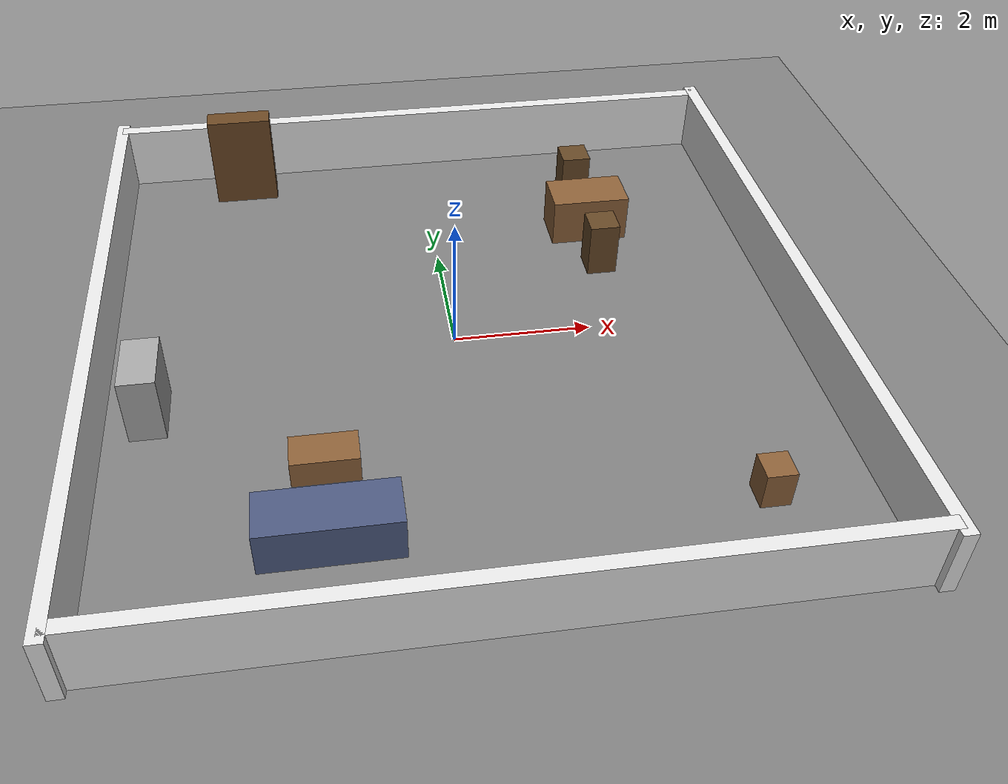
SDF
<?xml version="1.0"?>
<sdf version="1.9">
  <world name="room_10x10">

    <!-- ============================================================
         GZ SIM SYSTEM PLUGINS
         ============================================================ -->
    <plugin filename="gz-sim-physics-system" name="gz::sim::v8::systems::Physics"/>
    <plugin filename="gz-sim-scene-broadcaster-system" name="gz::sim::v8::systems::SceneBroadcaster"/>
    <plugin filename="gz-sim-user-commands-system" name="gz::sim::v8::systems::UserCommands"/>
    <plugin filename="gz-sim-sensors-system" name="gz::sim::v8::systems::Sensors">
      <render_engine>ogre2</render_engine>
    </plugin>

    <!-- ============================================================
         PHYSICS
         ============================================================ -->
    <physics name="1ms" type="ode">
      <real_time_update_rate>1000</real_time_update_rate>
      <max_step_size>0.001</max_step_size>
      <real_time_factor>1</real_time_factor>
      <ode>
        <solver>
          <type>quick</type>
          <iters>150</iters>
          <precon_iters>0</precon_iters>
          <sor>1.4</sor>
        </solver>
        <constraints>
          <cfm>1e-5</cfm>
          <erp>0.2</erp>
          <contact_max_correcting_vel>2000</contact_max_correcting_vel>
          <contact_surface_layer>0.01</contact_surface_layer>
        </constraints>
      </ode>
    </physics>

    <!-- ============================================================
         SCENE / LIGHTING
         ============================================================ -->
    <scene>
      <ambient>0.4 0.4 0.4 1</ambient>
      <background>0.7 0.7 0.7 1</background>
      <shadows>false</shadows>
    </scene>

    <!-- Directional sun light -->
    <light name="sun" type="directional">
      <cast_shadows>false</cast_shadows>
      <pose>0 0 10 0 0 0</pose>
      <diffuse>0.8 0.8 0.8 1</diffuse>
      <specular>0.2 0.2 0.2 1</specular>
      <direction>-0.5 0.1 -0.9</direction>
    </light>

    <!-- ============================================================
         GROUND PLANE
         ============================================================ -->
    <model name="ground_plane">
      <static>true</static>
      <link name="link">
        <collision name="collision">
          <geometry>
            <plane>
              <normal>0 0 1</normal>
              <size>100 100</size>
            </plane>
          </geometry>
          <surface>
            <friction>
              <ode>
                <mu>1</mu>
                <mu2>1</mu2>
              </ode>
            </friction>
          </surface>
        </collision>
        <visual name="visual">
          <cast_shadows>false</cast_shadows>
          <geometry>
            <plane>
              <normal>0 0 1</normal>
              <size>100 100</size>
            </plane>
          </geometry>
          <material>
            <ambient>0.5 0.5 0.5 1</ambient>
            <diffuse>0.5 0.5 0.5 1</diffuse>
          </material>
        </visual>
      </link>
    </model>

    <!-- NORTH wall: y = +5.0, runs along X axis -->
    <model name="wall_north">
      <static>true</static>
      <pose>0 5.0 0.5 0 0 0</pose>
      <link name="link">
        <collision name="collision">
          <geometry>
            <box><size>10.0 0.2 1.0</size></box>
          </geometry>
        </collision>
        <visual name="visual">
          <geometry>
            <box><size>10.0 0.2 1.0</size></box>
          </geometry>
          <material>
            <ambient>0.9 0.9 0.9 1</ambient>
            <diffuse>0.9 0.9 0.9 1</diffuse>
          </material>
        </visual>
      </link>
    </model>

    <!-- SOUTH wall: y = -5.0 -->
    <model name="wall_south">
      <static>true</static>
      <pose>0 -5.0 0.5 0 0 0</pose>
      <link name="link">
        <collision name="collision">
          <geometry>
            <box><size>10.0 0.2 1.0</size></box>
          </geometry>
        </collision>
        <visual name="visual">
          <geometry>
            <box><size>10.0 0.2 1.0</size></box>
          </geometry>
          <material>
            <ambient>0.9 0.9 0.9 1</ambient>
            <diffuse>0.9 0.9 0.9 1</diffuse>
          </material>
        </visual>
      </link>
    </model>

    <!-- EAST wall: x = +5.0, runs along Y axis -->
    <model name="wall_east">
      <static>true</static>
      <pose>5.0 0 0.5 0 0 0</pose>
      <link name="link">
        <collision name="collision">
          <geometry>
            <box><size>0.2 10.4 1.0</size></box>
          </geometry>
        </collision>
        <visual name="visual">
          <geometry>
            <box><size>0.2 10.4 1.0</size></box>
          </geometry>
          <material>
            <ambient>0.9 0.9 0.9 1</ambient>
            <diffuse>0.9 0.9 0.9 1</diffuse>
          </material>
        </visual>
      </link>
    </model>

    <!-- WEST wall: x = -5.0 -->
    <model name="wall_west">
      <static>true</static>
      <pose>-5.0 0 0.5 0 0 0</pose>
      <link name="link">
        <collision name="collision">
          <geometry>
            <box><size>0.2 10.4 1.0</size></box>
          </geometry>
        </collision>
        <visual name="visual">
          <geometry>
            <box><size>0.2 10.4 1.0</size></box>
          </geometry>
          <material>
            <ambient>0.9 0.9 0.9 1</ambient>
            <diffuse>0.9 0.9 0.9 1</diffuse>
          </material>
        </visual>
      </link>
    </model>

    <!-- Table (northeast quadrant): 1.2 m x 0.7 m top, 0.75 m tall -->
    <model name="table">
      <static>true</static>
      <pose>2.5 2.5 0.375 0 0 0</pose>
      <link name="link">
        <collision name="collision"><geometry><box><size>1.2 0.7 0.75</size></box></geometry></collision>
        <visual name="visual"><geometry><box><size>1.2 0.7 0.75</size></box></geometry>
          <material><ambient>0.45 0.3 0.18 1</ambient><diffuse>0.55 0.38 0.22 1</diffuse></material>
        </visual>
      </link>
    </model>

    <!-- Chair at table: 0.45 m x 0.45 m x 0.85 m -->
    <model name="chair_1">
      <static>true</static>
      <pose>2.5 1.5 0.425 0 0 0</pose>
      <link name="link">
        <collision name="collision"><geometry><box><size>0.45 0.45 0.85</size></box></geometry></collision>
        <visual name="visual"><geometry><box><size>0.45 0.45 0.85</size></box></geometry>
          <material><ambient>0.3 0.2 0.12 1</ambient><diffuse>0.4 0.28 0.15 1</diffuse></material>
        </visual>
      </link>
    </model>

    <!-- Second chair opposite side -->
    <model name="chair_2">
      <static>true</static>
      <pose>2.5 3.5 0.425 0 0 0</pose>
      <link name="link">
        <collision name="collision"><geometry><box><size>0.45 0.45 0.85</size></box></geometry></collision>
        <visual name="visual"><geometry><box><size>0.45 0.45 0.85</size></box></geometry>
          <material><ambient>0.3 0.2 0.12 1</ambient><diffuse>0.4 0.28 0.15 1</diffuse></material>
        </visual>
      </link>
    </model>

    <!-- Bookshelf against north wall (northwest): 1.0 m x 0.35 m x 1.5 m -->
    <model name="bookshelf">
      <static>true</static>
      <pose>-3.0 4.3 0.75 0 0 0</pose>
      <link name="link">
        <collision name="collision"><geometry><box><size>1.0 0.35 1.5</size></box></geometry></collision>
        <visual name="visual"><geometry><box><size>1.0 0.35 1.5</size></box></geometry>
          <material><ambient>0.35 0.22 0.1 1</ambient><diffuse>0.42 0.28 0.14 1</diffuse></material>
        </visual>
      </link>
    </model>

    <!-- Cabinet against west wall: 0.5 m x 0.9 m x 1.0 m -->
    <model name="cabinet">
      <static>true</static>
      <pose>-4.3 -1.0 0.5 0 0 0</pose>
      <link name="link">
        <collision name="collision"><geometry><box><size>0.5 0.9 1.0</size></box></geometry></collision>
        <visual name="visual"><geometry><box><size>0.5 0.9 1.0</size></box></geometry>
          <material><ambient>0.6 0.6 0.6 1</ambient><diffuse>0.65 0.65 0.65 1</diffuse></material>
        </visual>
      </link>
    </model>

    <!-- Sofa (southwest quadrant): 1.8 m x 0.7 m x 0.65 m -->
    <model name="sofa">
      <static>true</static>
      <pose>-2.0 -3.5 0.325 0 0 0</pose>
      <link name="link">
        <collision name="collision"><geometry><box><size>1.8 0.7 0.65</size></box></geometry></collision>
        <visual name="visual"><geometry><box><size>1.8 0.7 0.65</size></box></geometry>
          <material><ambient>0.25 0.3 0.45 1</ambient><diffuse>0.3 0.35 0.5 1</diffuse></material>
        </visual>
      </link>
    </model>

    <!-- Coffee table in front of sofa: 0.9 m x 0.5 m x 0.4 m -->
    <model name="coffee_table">
      <static>true</static>
      <pose>-2.0 -2.3 0.2 0 0 0</pose>
      <link name="link">
        <collision name="collision"><geometry><box><size>0.9 0.5 0.4</size></box></geometry></collision>
        <visual name="visual"><geometry><box><size>0.9 0.5 0.4</size></box></geometry>
          <material><ambient>0.45 0.3 0.18 1</ambient><diffuse>0.55 0.38 0.22 1</diffuse></material>
        </visual>
      </link>
    </model>

    <!-- Small side table (southeast): 0.4 m x 0.4 m x 0.55 m -->
    <model name="side_table">
      <static>true</static>
      <pose>3.5 -3.5 0.275 0 0 0</pose>
      <link name="link">
        <collision name="collision"><geometry><box><size>0.4 0.4 0.55</size></box></geometry></collision>
        <visual name="visual"><geometry><box><size>0.4 0.4 0.55</size></box></geometry>
          <material><ambient>0.45 0.3 0.18 1</ambient><diffuse>0.55 0.38 0.22 1</diffuse></material>
        </visual>
      </link>
    </model>

  </world>
</sdf>
